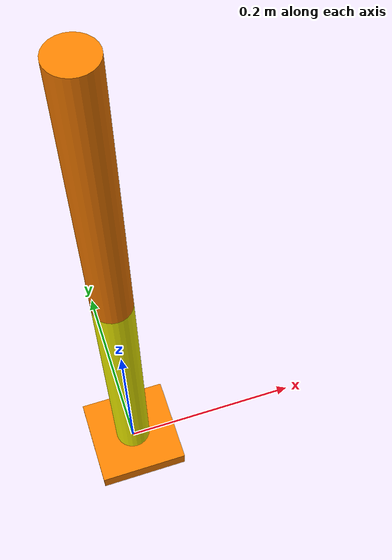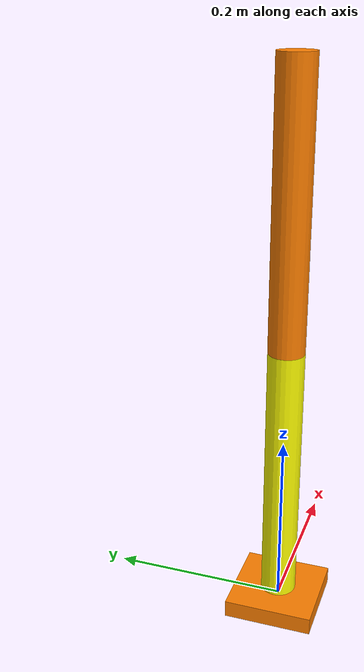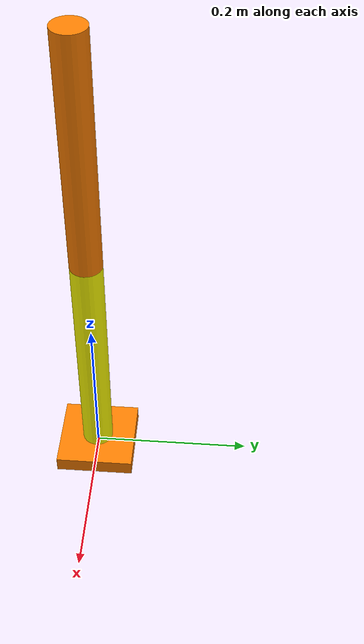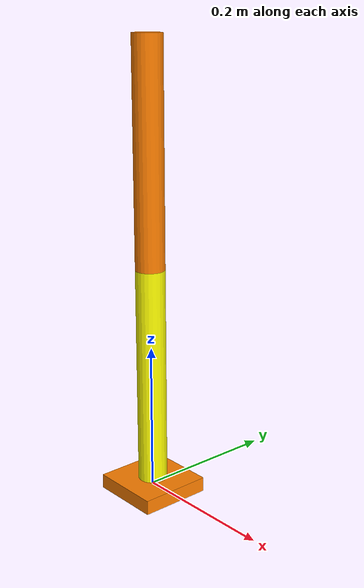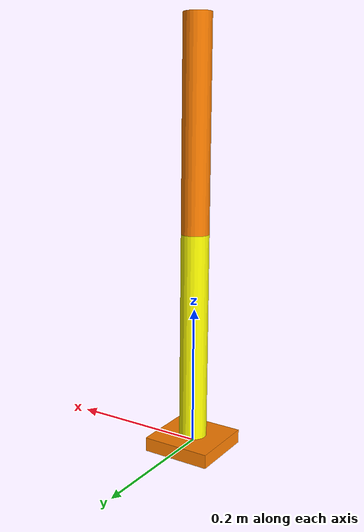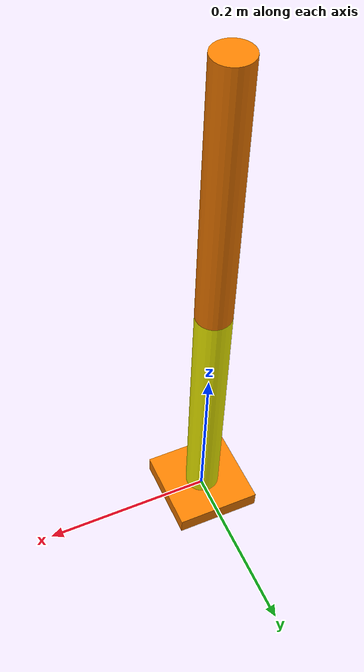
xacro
<?xml version="1.0"?>

<robot name="my_robot" xmlns:xacro="http://www.ros.org/wiki/xacro">

<xacro:include filename="$(find my_robot_description)/urdf/common_properties.xacro"/>
<xacro:include filename="$(find my_robot_description)/urdf/mobile_arm.xacro"/>
<xacro:include filename="$(find my_robot_description)/urdf/arm_gazebo.xacro"/>
</robot>

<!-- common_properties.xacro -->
<robot xmlns:xacro="http://www.ros.org/wiki/xacro">
    <material name="blue">
        <color rgba="0 0 0.5 1"/>
    </material>
    <material name="grey">
        <color rgba="0.5 0.5 0.5 1"/>
    </material>
    <material name="orange">
        <color rgba="1.0 0.5 0 1"/>
    </material>
    <material name="yellow">
        <color rgba="1.0 1.0 0 1"/>
    </material>

    <xacro:macro name="box_inertia" params="m l w h xyz rpy">
        <inertial>
            <mass value="${m}" />
            <origin xyz="${xyz}" rpy ="${rpy}" />
            <inertia ixx="${(m/12) * (h*h + l*l)}" ixy="0" ixz="0"
                     iyy="${(m/12) * (w*w + l*l)}" iyz ="0"
                     izz="${(m/12) * (h*h + w*w )}" />
        </inertial>
    </xacro:macro>

    <xacro:macro name="wheel_inertia" params="m r l xyz rpy">
        <inertial>
            <mass value="${m}" />
            <origin xyz="${xyz}" rpy ="${rpy}" />
            <inertia ixx="${(m/12) * (3*r*r + l*l)}" ixy="0" ixz="0"
                     iyy="${(m/12) * (3*r*r + l*l)}" iyz ="0"
                     izz="${m*r*r/2}" />
        </inertial>
    </xacro:macro>

    <xacro:macro name="caster_wheel_inertia" params="m r xyz rpy">
        <inertial>
            <mass value="${m}" />
            <origin xyz="${xyz}" rpy ="${rpy}" />
            <inertia ixx="${2/5*m*r*r}" ixy="0" ixz="0"
                     iyy="${2/5*m*r*r}" iyz ="0"
                     izz="${2/5*m*r*r}" />
        </inertial>
    </xacro:macro>

</robot>

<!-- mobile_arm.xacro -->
<robot name="my_robot" xmlns:xacro="http://www.ros.org/wiki/xacro">

    <xacro:property name="arm_base_length" value="0.1"/>
    <xacro:property name="arm_base_width" value="0.1"/>
    <xacro:property name="arm_base_height" value="0.02"/>
    <xacro:property name="forearm_link_radius" value="0.02"/>
    <xacro:property name="forearm_link_length" value="0.3"/>
    <xacro:property name="hand_link_radius" value="0.02"/>
    <xacro:property name="hand_link_length" value="0.3"/>

        <link name="arm_base_footprint"/>
        <joint name = "base_footprint_arm_joint" type="fixed">
            <parent link="arm_base_footprint"/>
            <child link = "arm_base_link"/>
            <origin xyz="0 0 0" rpy="0 0 0"/>
        </joint>

        <link name="arm_base_link">
            <visual>
                <geometry>
                    <box size="${arm_base_length} ${arm_base_width} ${arm_base_height}" />
                </geometry>
                <origin xyz="0 0 0" rpy="0 0 0" />
                <material name="orange"/>
            </visual>
            <collision>
                <geometry>
                    <box size="${arm_base_length} ${arm_base_width} ${arm_base_height}" />
                </geometry>
                <origin xyz="0 0 0" rpy="0 0 0" />
            </collision>
            <xacro:box_inertia  m="0.5" l="${arm_base_length}" w="${arm_base_width}" h="${arm_base_height}"
                                xyz="0 0 0" rpy="${pi/2} 0 0"/>
        </link>

        <joint name = "base_forarm_joint" type="revolute">
            <parent link="arm_base_link"/>
            <child link = "forearm_link"/>
            <origin xyz="0 0 ${arm_base_height/2}" rpy="0 0 0"/>
            <axis xyz="0 1 0"/>
            <dynamics damping="0.1" friction="0.1"/>
            <limit lower="0" upper="${pi/2}" effort="100" velocity="100"/>
        </joint>

        <link name="forearm_link">
            <visual>
                <geometry>
                    <cylinder radius="${forearm_link_radius}" length="${forearm_link_length}" />
                </geometry>
                <origin xyz="0 0 ${forearm_link_length/2.0}" rpy="0 0 0" />
                <material name="yellow"/>
            </visual>
            <collision>
                <geometry>
                    <cylinder radius="${forearm_link_radius}" length="${forearm_link_length}" />
                </geometry>
                <origin xyz="0 0 ${forearm_link_length/2.0}" rpy="0 0 0" />
            </collision>
            <xacro:wheel_inertia  m="0.3" r="${forearm_link_radius}" l="${forearm_link_length}"
                                    xyz="0 0 ${forearm_link_length/2.0}" rpy="0 0 0"/>
        </link>

        <link name="hand_link">
            <visual>
                <geometry>
                    <cylinder radius="${hand_link_radius}" length="${hand_link_length}" />
                </geometry>
                <origin xyz="0 0 ${hand_link_length/2.0}" rpy="0 0 0" />
                <material name="orange"/>
            </visual>
            <collision>
                <geometry>
                    <cylinder radius="${hand_link_radius}" length="${hand_link_length}" />
                </geometry>
                <origin xyz="0 0 ${hand_link_length/2.0}" rpy="0 0 0" />
            </collision>
            <xacro:wheel_inertia  m="0.3" r="${hand_link_radius}" l="${hand_link_length}"
                                    xyz="0 0 ${hand_link_length/2.0}" rpy="0 0 0"/>
        </link>

        <joint name = "forearm_hand_joint" type="revolute">
            <parent link="forearm_link"/>
            <child link = "hand_link"/>
            <origin xyz="0 0 ${hand_link_length}" rpy="0 0 0"/>
            <axis xyz="0 1 0"/>
            <dynamics damping="0.1" friction="0.1"/>
            <limit lower="0" upper="${pi/2}" effort="100" velocity="100"/>
        </joint>
</robot>
